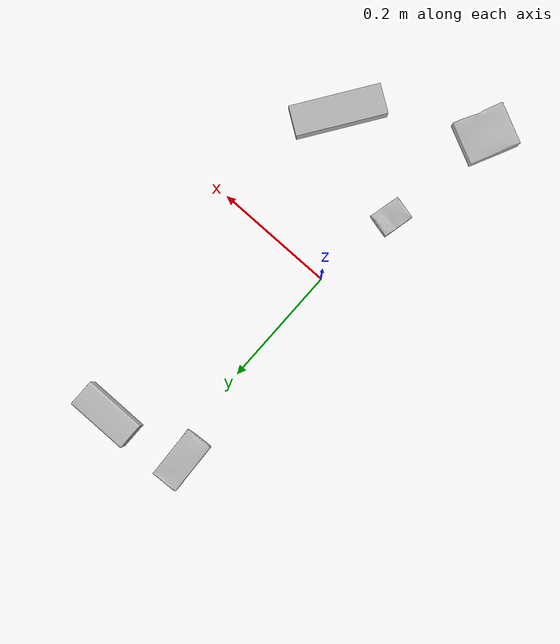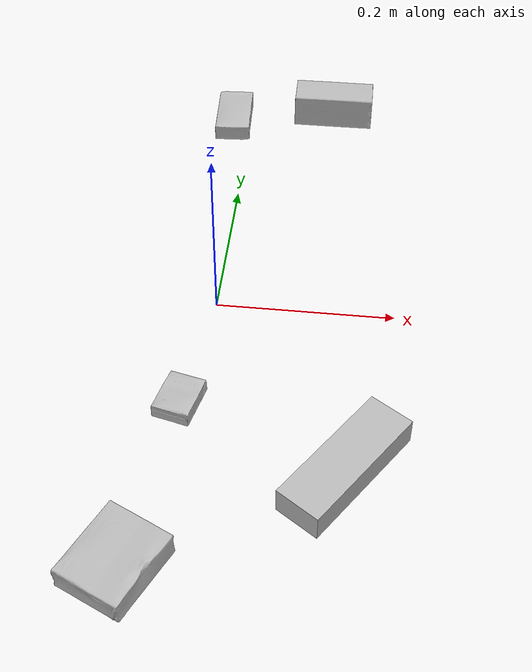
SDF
<sdf version="1.4">
  <world name="default">
    <light name="light1" type="point">
      <pose>0 0 1 0 0 0</pose>
      <diffuse>3 3 3 1</diffuse>
      <specular>3 3 3 1</specular>
    </light>
    <light name="light2" type="point">
      <pose>0 0.5 2 0 0 0</pose>
      <diffuse>1 1 1 1</diffuse>
      <specular>1 1 1 1</specular>
    </light>
    <light name="light3" type="point">
      <pose>0 0.5 2 0 0 0</pose>
      <diffuse>3 3 3 1</diffuse>
      <specular>3 3 3 1</specular>
    </light>
    <scene>
      <ambient>0.7 0.7 0.7</ambient>
    </scene>
    <model name="box1">
      <link name="link_box1">
        <collision name="default">
          <geometry>
            <mesh>
              <uri>model://sugar_box/collision_meshes/collision.obj</uri>
              <scale>0.5 0.5 0.5</scale>
            </mesh>
          </geometry>
          <surface>
            <friction>
              <ode>
                <mu>0.5</mu>
                <mu2>0.5</mu2>
              </ode>
            </friction>
          <contact>
        <ode>
            <max_vel>0</max_vel>
            <min_depth>0.0001</min_depth>
            <kp>1e8</kp>
        </ode>
    </contact></surface>
        </collision>
        <visual name="default">
          <geometry>
            <mesh>
              <uri>model://sugar_box/visual_meshes/visual.dae</uri>
              <scale>0.5 0.5 0.5</scale>
            </mesh>
          </geometry>
        </visual>
        <inertial>
          <mass>0.05016465485095978</mass>
          <pose>0.0005171863595023751 1.924554817378521e-05 -0.0001818240125430748 -0.00040462615463102695 0.0010506635220671036 0.0026153792546614123</pose>
          <inertia>
            <ixx>1.0449262e-05</ixx>
            <iyy>3.3774166e-05</iyy>
            <izz>4.0431696e-05</izz>
            <ixy>0</ixy>
            <ixz>0</ixz>
            <iyz>0</iyz>
          </inertia>
        </inertial>
      </link>
      <pose>-0.02400420419871807 0.35532745718955994 0.011399302631616592 0.0007751052308764391 -0.023432410586908314 -1.5268102557392098</pose>
    </model>
    <model name="box2">
      <link name="link_box2">
        <collision name="default">
          <geometry>
            <mesh>
              <uri>model://cracker_box/collision_meshes/collision.obj</uri>
              <scale>0.25 0.25 0.25</scale>
            </mesh>
          </geometry>
          <surface>
            <friction>
              <ode>
                <mu>0.5</mu>
                <mu2>0.5</mu2>
              </ode>
            </friction>
          <contact>
        <ode>
            <max_vel>0</max_vel>
            <min_depth>0.0001</min_depth>
            <kp>1e8</kp>
        </ode>
    </contact></surface>
        </collision>
        <visual name="default">
          <geometry>
            <mesh>
              <uri>model://cracker_box/visual_meshes/visual.dae</uri>
              <scale>0.25 0.25 0.25</scale>
            </mesh>
          </geometry>
        </visual>
        <inertial>
          <mass>0.05325852707028389</mass>
          <pose>0.0002366033149883151 6.358561950037256e-05 -0.0004257383698131889 -0.000316207624135088 -0.011106486806293444 0.0025467950014945295</pose>
          <inertia>
            <ixx>8.46662e-06</ixx>
            <iyy>1.3980052e-05</iyy>
            <izz>1.995082e-05</izz>
            <ixy>0</ixy>
            <ixz>0</ixz>
            <iyz>0</iyz>
          </inertia>
        </inertial>
      </link>
      <pose>-0.0188849288970232 -0.1468239724636078 0.009120451286435127 -0.011787942014214167 -0.00736716940776257 -1.806391577494531</pose>
    </model>
    <model name="box3">
      <link name="link_box3">
        <collision name="default">
          <geometry>
            <mesh>
              <uri>model://wood_block/collision_meshes/collision.obj</uri>
              <scale>0.5 0.5 0.5</scale>
            </mesh>
          </geometry>
          <surface>
            <friction>
              <ode>
                <mu>0.5</mu>
                <mu2>0.5</mu2>
              </ode>
            </friction>
          <contact>
        <ode>
            <max_vel>0</max_vel>
            <min_depth>0.0001</min_depth>
            <kp>1e8</kp>
        </ode>
    </contact></surface>
        </collision>
        <visual name="default">
          <geometry>
            <mesh>
              <uri>model://wood_block/visual_meshes/visual.dae</uri>
              <scale>0.5 0.5 0.5</scale>
            </mesh>
          </geometry>
        </visual>
        <inertial>
          <mass>0.24977724254131317</mass>
          <pose>-2.9066577553749084e-06 -0.00028540476341731846 0.00013204291462898254 -0.05220975529066727 -0.005192695547513155 -0.006861377927637377</pose>
          <inertia>
            <ixx>8.355995e-05</ixx>
            <iyy>0.00026396586</iyy>
            <izz>0.00026297852</izz>
            <ixy>0</ixy>
            <ixz>0</ixz>
            <iyz>0</iyz>
          </inertia>
        </inertial>
      </link>
      <pose>0.10926532000303268 0.3779917061328888 0.02262927033007145 -0.005208620957254187 0.005718687683971824 0.004921473441705955</pose>
    </model>
    <model name="box4">
      <link name="link_box4">
        <collision name="default">
          <geometry>
            <mesh>
              <uri>model://gelatin_box/collision_meshes/collision.obj</uri>
              <scale>1.0 1.0 1.0</scale>
            </mesh>
          </geometry>
          <surface>
            <friction>
              <ode>
                <mu>0.5</mu>
                <mu2>0.5</mu2>
              </ode>
            </friction>
          <contact>
        <ode>
            <max_vel>0</max_vel>
            <min_depth>0.0001</min_depth>
            <kp>1e8</kp>
        </ode>
    </contact></surface>
        </collision>
        <visual name="default">
          <geometry>
            <mesh>
              <uri>model://gelatin_box/visual_meshes/visual.dae</uri>
              <scale>1.0 1.0 1.0</scale>
            </mesh>
          </geometry>
        </visual>
        <inertial>
          <mass>0.142814502120018</mass>
          <pose>0.0004319618456065655 0.00011156871187267825 -0.0003640321083366871 -0.0010503719804291966 -0.004755819155973465 0.01644055947187314</pose>
          <inertia>
            <ixx>0.000100815385</ixx>
            <iyy>7.20119e-05</iyy>
            <izz>0.00015346348</izz>
            <ixy>0</ixy>
            <ixz>0</ixz>
            <iyz>0</iyz>
          </inertia>
        </inertial>
      </link>
      <pose>-0.045435257256031036 -0.3446667194366455 0.01516831386834383 0.005597472256299626 -0.007304573987573088 -0.45813817561518344</pose>
    </model>
    <model name="box5">
      <link name="link_box5">
        <collision name="default">
          <geometry>
            <mesh>
              <uri>model://jenga/collision_meshes/collision.obj</uri>
              <scale>1.0 1.0 1.0</scale>
            </mesh>
          </geometry>
          <surface>
            <friction>
              <ode>
                <mu>0.5</mu>
                <mu2>0.5</mu2>
              </ode>
            </friction>
          <contact>
        <ode>
            <max_vel>0</max_vel>
            <min_depth>0.0001</min_depth>
            <kp>1e8</kp>
        </ode>
    </contact></surface>
        </collision>
        <visual name="default">
          <geometry>
            <mesh>
              <uri>model://jenga/visual_meshes/visual.dae</uri>
              <scale>1.0 1.0 1.0</scale>
            </mesh>
          </geometry>
        </visual>
        <inertial>
          <mass>0.11303283274173737</mass>
          <pose>-2.502855807051674e-07 -0.00010250010382151231 -4.0923401684267446e-05 0.0 -7.342155186052628e-07 0.0</pose>
          <inertia>
            <ixx>3.127893e-05</ixx>
            <iyy>0.00021194515</iyy>
            <izz>0.00022626946</izz>
            <ixy>0</ixy>
            <ixz>0</ixz>
            <iyz>0</iyz>
          </inertia>
        </inertial>
      </link>
      <pose>0.15529479086399078 -0.21775755286216736 0.014999995939433575 -8.852364980177662e-09 -9.877378240262062e-10 0.9684997563489165</pose>
    </model>
  <physics type="ode">
      <max_contacts>50</max_contacts>
      <ode>
        <solver>
          <type>quick</type>
          <iters>75</iters>
        </solver>
        <constraints>
          <contact_max_correcting_vel>0</contact_max_correcting_vel>
          <contact_surface_layer>0</contact_surface_layer>
        </constraints>
      </ode>
    </physics></world>
</sdf>
